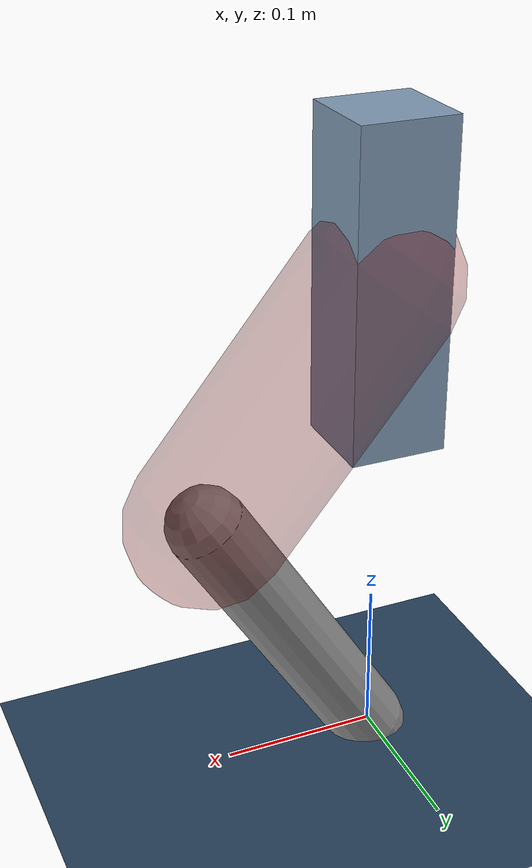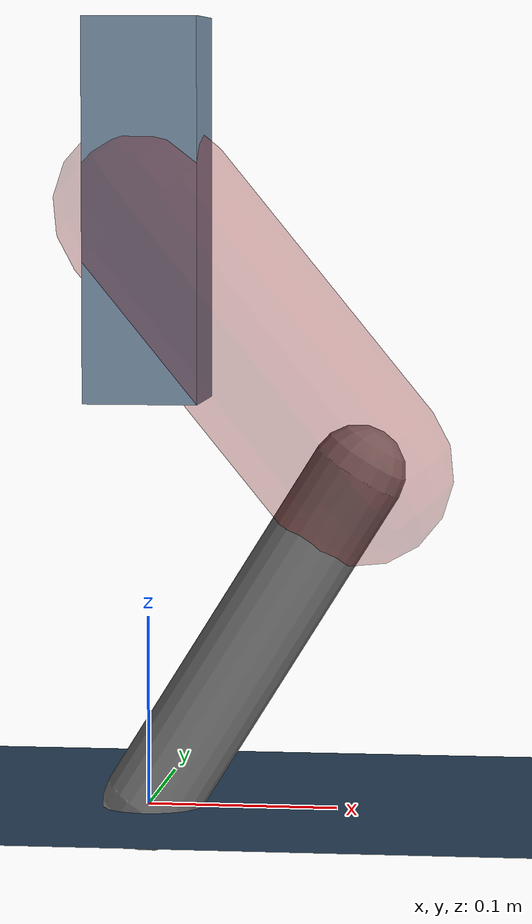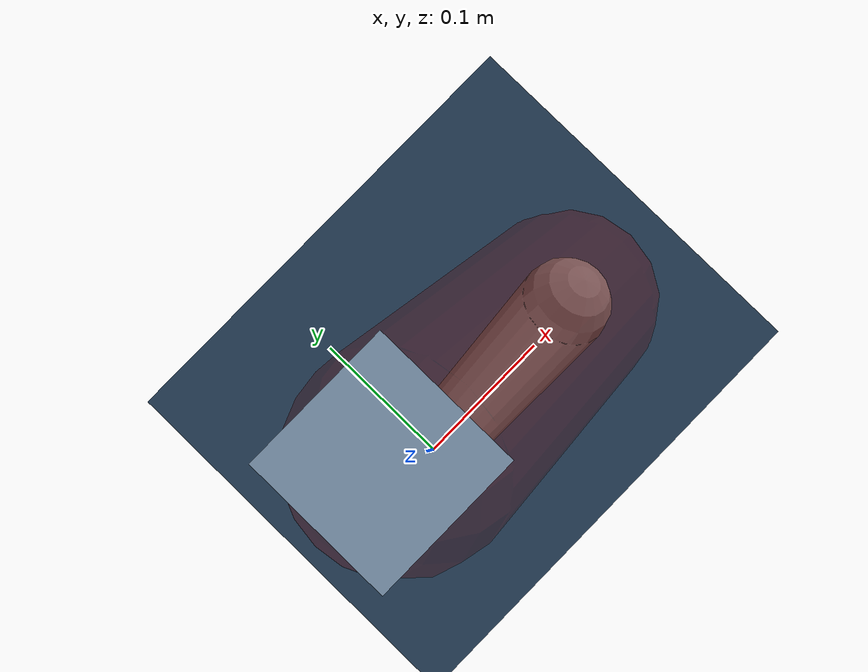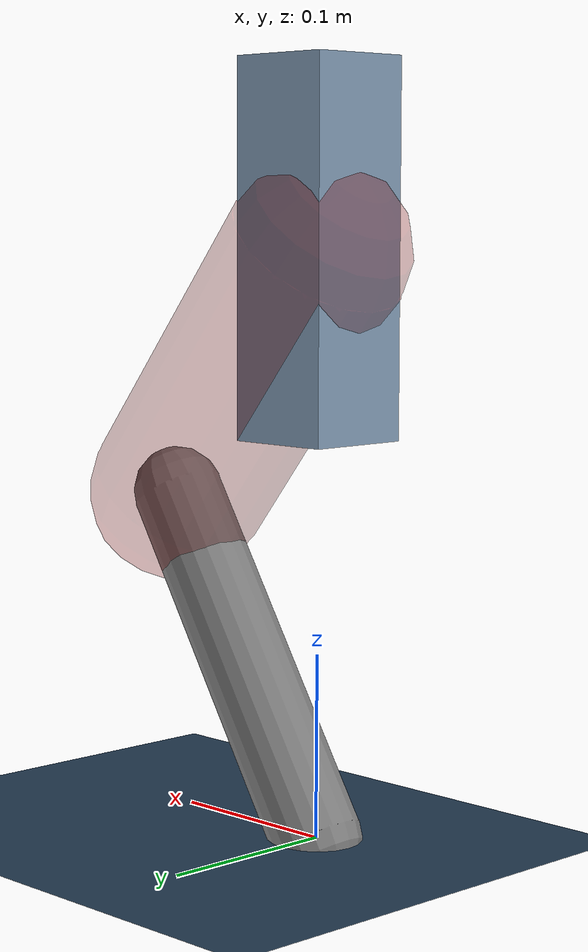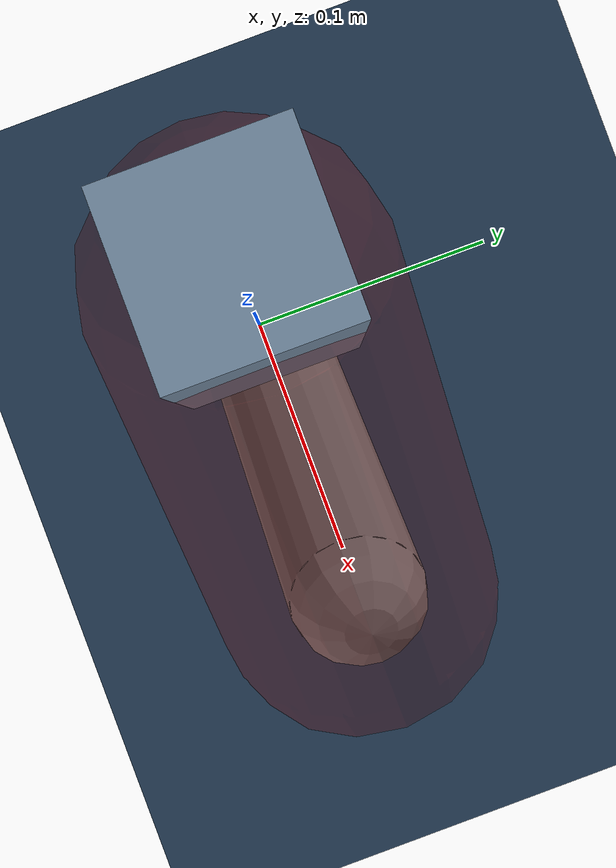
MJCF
<mujoco model="Hopper2D">
	<compiler inertiafromgeom="true" angle="radian" />
	<option timestep="0.001" integrator="implicit" cone="elliptic" solver="Newton" tolerance="1e-10" />

	<default>
		<geom contype="1" conaffinity="1" condim="3" friction="2 0.005 0.0001" solref="0.005 1" />
		<joint limited="true" damping="0.1" />
	</default>

	<asset>
		<texture name="skybox" type="skybox" builtin="gradient" rgb1=".4 .6 .8" rgb2="0 0 0" width="800" height="800" />
		<texture name="grid" type="2d" builtin="checker" rgb1=".1 .2 .3" rgb2=".2 .3 .4" width="300" height="300" mark="edge" markrgb=".2 .3 .4" />
		<material name="ground" texture="grid" texrepeat="1 1" texuniform="true" reflectance="0.1" />
		<material name="leg" rgba="0.5 0.6 0.7 1" />
	</asset>

	<worldbody>

		<geom name="floor" type="plane" size="5 5 0.25" material="ground" />

		<light directional="false" diffuse="0.8 0.8 0.8" specular="0.3 0.3 0.3" pos="0 0 2" dir="0 0 -1" />
		<light mode="targetbodycom" target="base" directional="false" diffuse="0.8 0.8 0.8" specular="0.3 0.3 0.3" pos="0 0 2" dir="0 0 -1" />

		<camera name="fixed" pos="0 -2 1" xyaxes="1 0 0 0 0 1" />
		<camera name="tracking" mode="trackcom" pos="0 -3 1" />

		<body name="root" pos="0 0 0.31464275165268357">
			<joint name="slide_x" type="slide" axis="1 0 0" range="-100 100" />
			<joint name="slide_z" type="slide" axis="0 0 1" range="0 10" />

			<body name="base" pos="0 0 0">
				<geom name="torso" type="box" size="0.03 0.03 0.1" mass="2.0300000000000002" material="leg" />

				<body name="link1" pos="0 0 0" euler="0 0.8874509086320053 0">
					<joint type="hinge" axis="0 -1 0" pos="0 0 0" name="hinge1" limited="true" range="-3.14 3.14" stiffness="0" damping="0.1" />
					<geom name="thigh" type="capsule" fromto="0 0 0 0.17595048824531861 0 0" size="0.05" rgba="0.5 0 0 0.3" mass="0.6706811717887646" />

					<body name="link2" pos="0.17595048824531861 0 0" euler="0 1.2408097138012935 0">
						<joint type="hinge" axis="0 -1 0" pos="0 0 0" name="hinge2" limited="true" range="-3.14 3.14" stiffness="0" damping="0.1" />
						<geom name="shank" type="capsule" fromto="0 0 0 0.20999232341954843 0 0" size="0.025" mass="0.4092938587356387" />

					</body>
				</body>
			</body>
		</body>
	</worldbody>

	<actuator>
		<motor name="torque1" joint="hinge1" ctrlrange="-14.806271367273306 14.806271367273306" ctrllimited="true" gear="1" />
		<motor name="torque2" joint="hinge2" ctrlrange="-74.69788809279419 74.69788809279419" ctrllimited="true" gear="1" />
	</actuator>
</mujoco>
